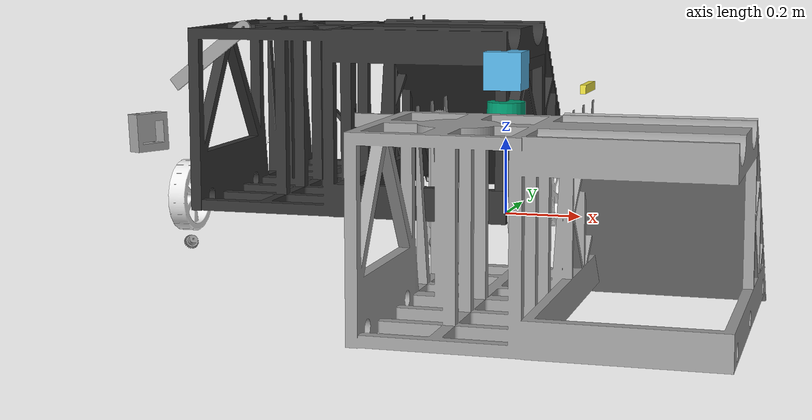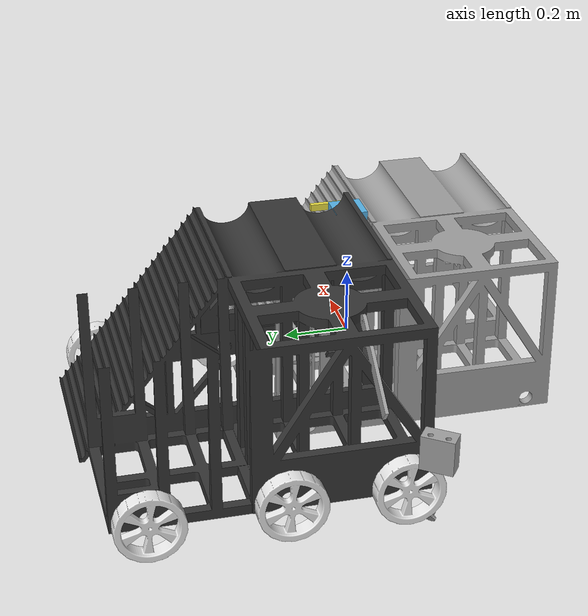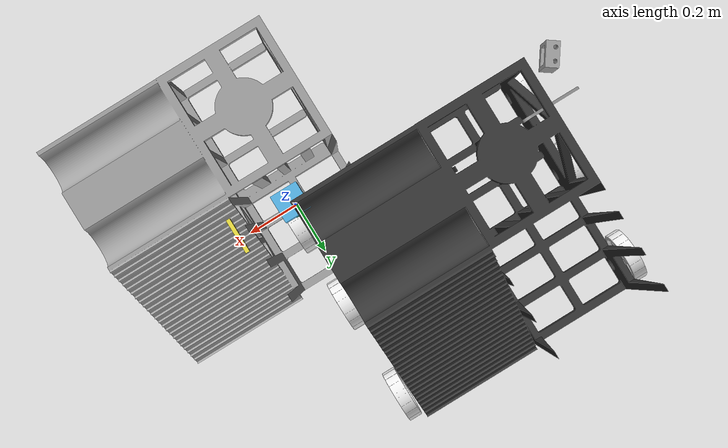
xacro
<?xml version="1.0"?>
<robot name="robot_R1" xmlns:xacro="http://ros.org/wiki/xacro">

  <!-- Include the base robot (chassis, wheels, sensors) -->
  <xacro:include filename="base_R1.xacro" />

  <!-- Include the hand/arm manipulator -->
  <xacro:include filename="hand.xacro" />

  <!-- Instantiate the base -->
  <xacro:r1_base />

  <!-- Instantiate the hand manipulator -->
  <xacro:hand_manipulator />

  <!-- Connect hand to the base via the torso mount point -->
  <joint name="hand_to_base_joint" type="fixed">
    <parent link="base_link_torso_mount_point"/>
    <child link="hand_root_link"/>
    <origin xyz="0 0 0" rpy="3.14159 0 0"/>
  </joint>

</robot>

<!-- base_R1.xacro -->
<robot xmlns:xacro="http://ros.org/wiki/xacro">

  <!-- R1 Base Macro: chassis, 6 mecanum wheels, sensors             -->
  <!-- Converted from R1/robot.sdf (onshape-to-robot export)        -->

  <!-- Materials -->
  <material name="dark_grey">
    <color rgba="0.207843 0.207843 0.207843 1"/>
  </material>
  <material name="light_grey">
    <color rgba="0.627451 0.627451 0.627451 1"/>
  </material>
  <material name="wheel_white">
    <color rgba="0.917647 0.917647 0.917647 1"/>
  </material>
  <material name="metal">
    <color rgba="0.65098 0.619608 0.588235 1"/>
  </material>
  <material name="axle_silver">
    <color rgba="0.776471 0.756863 0.737255 1"/>
  </material>

  <!-- Wheel assembly macro (motor + wheel, all fixed for RSP)      -->
  <xacro:macro name="wheel_assembly" params="name motor_name
      motor_x motor_y motor_z motor_roll motor_pitch motor_yaw
      wheel_x wheel_y wheel_z wheel_roll wheel_pitch wheel_yaw
      vis_x vis_y vis_z vis_roll vis_pitch vis_yaw">

    <!-- Motor link (no visual in RSP – tiny box placeholder) -->
    <link name="${motor_name}">
      <inertial>
        <origin xyz="0.0000014 0.000109 -0.057213" rpy="0 0 0"/>
        <mass value="0.324308"/>
        <inertia ixx="0.000605469" ixy="0" ixz="0"
                 iyy="0.000605856" iyz="0.00000308"
                 izz="0.0000811588"/>
      </inertial>
    </link>

    <!-- Motor mount joint -->
    <joint name="${motor_name}_joint" type="fixed">
      <parent link="chassis_link"/>
      <child link="${motor_name}"/>
      <origin xyz="${motor_x} ${motor_y} ${motor_z}"
              rpy="${motor_roll} ${motor_pitch} ${motor_yaw}"/>
    </joint>

    <!-- Wheel link -->
    <link name="${name}">
      <visual>
        <origin xyz="${vis_x} ${vis_y} ${vis_z}"
                rpy="${vis_roll} ${vis_pitch} ${vis_yaw}"/>
        <geometry>
          <mesh filename="package://robocon_description/models/R1/assets/wheel.stl"/>
        </geometry>
        <material name="wheel_white"/>
      </visual>
      <collision>
        <origin xyz="${vis_x} ${vis_y} ${vis_z}"
                rpy="${vis_roll} ${vis_pitch} ${vis_yaw}"/>
        <geometry>
          <mesh filename="package://robocon_description/models/R1/assets/wheel.stl"/>
        </geometry>
      </collision>
      <inertial>
        <origin xyz="0 0 -0.0125" rpy="0 0 0"/>
        <mass value="0.971481"/>
        <inertia ixx="0.00341056" ixy="0" ixz="0"
                 iyy="0.00341056" iyz="0"
                 izz="0.00650278"/>
      </inertial>
    </link>

    <!-- Wheel joint -->
    <joint name="${name}_joint" type="fixed">
      <parent link="${motor_name}"/>
      <child link="${name}"/>
      <origin xyz="${wheel_x} ${wheel_y} ${wheel_z}"
              rpy="${wheel_roll} ${wheel_pitch} ${wheel_yaw}"/>
    </joint>
  </xacro:macro>

  <!-- Main R1 Base Macro                                            -->
  <xacro:macro name="r1_base">

    <!-- ======== ROS Standard Roots ======== -->
    <link name="base_footprint"/>

    <joint name="base_joint" type="fixed">
      <parent link="base_footprint"/>
      <child link="base_link"/>
      <origin xyz="0 0 0.05" rpy="0 0 0"/>
    </joint>

    <link name="base_link"/>

    <!-- Flip the upside-down CAD and hoist it so wheels touch the floor -->
    <!-- Wheels are at Z=0.389 relative to the flipped chassis -->
    <joint name="chassis_joint" type="fixed">
      <parent link="base_link"/>
      <child link="chassis_link"/>
      <origin xyz="0 0 0.339" rpy="3.14159 0 0"/>
    </joint>

    <!-- ======== base_link (root of the robot) ======== -->
    <link name="chassis_link">
      <visual>
        <origin xyz="-0.9 -0.835751 0.348078" rpy="-3.14159 0 0"/>
        <geometry>
          <mesh filename="package://robocon_description/models/R1/assets/base_link.stl"/>
        </geometry>
        <material name="dark_grey"/>
      </visual>
      <collision>
        <origin xyz="-0.9 -0.835751 0.348078" rpy="-3.14159 0 0"/>
        <geometry>
          <mesh filename="package://robocon_description/models/R1/assets/base_link.stl"/>
        </geometry>
      </collision>
      <inertial>
        <origin xyz="-0.485863 -0.403669 0.194909" rpy="0 0 0"/>
        <mass value="41.4803"/>
        <inertia ixx="4.3721" ixy="0.293695" ixz="0.231154"
                 iyy="4.8724" iyz="0.568069"
                 izz="6.23924"/>
      </inertial>
    </link>

    <!-- ======== side_frame (child of base_link) ======== -->
    <link name="side_frame">
      <visual>
        <origin xyz="-0.450001 0.373741 0.14124" rpy="0 0 0"/>
        <geometry>
          <mesh filename="package://robocon_description/models/R1/assets/side_frame.stl"/>
        </geometry>
        <material name="dark_grey"/>
      </visual>
      <collision>
        <origin xyz="-0.450001 0.373741 0.14124" rpy="0 0 0"/>
        <geometry>
          <mesh filename="package://robocon_description/models/R1/assets/side_frame.stl"/>
        </geometry>
      </collision>
      <inertial>
        <origin xyz="0.434999 -0.222872 0.309742" rpy="0 0 0"/>
        <mass value="2.95367"/>
        <inertia ixx="0.110659" ixy="0" ixz="0"
                 iyy="0.0398301" iyz="0.0000176212"
                 izz="0.0712717"/>
      </inertial>
    </link>

    <joint name="side_frame_joint" type="fixed">
      <parent link="chassis_link"/>
      <child link="side_frame"/>
      <!-- Inverse transform of the original Fastened 1 -->
      <origin xyz="-0.449999 -0.462921 0.489318" rpy="3.14159 0 0"/>
    </joint>

    <!-- Mount point for the hand/arm manipulator -->
    <link name="base_link_torso_mount_point"/>
    <joint name="torso_mount_joint" type="fixed">
      <parent link="chassis_link"/>
      <child link="base_link_torso_mount_point"/>
      <!-- Arm is included at this offset in R1 robot.sdf -->
      <origin xyz="-0.239995 -0.224112 0.576396" rpy="0 0 0"/>
    </joint>

    <!-- 6x Mecanum Wheel Assemblies                                   -->
    <!-- Poses extracted from R1/robot.sdf Fastened joints             -->

    <!-- Wheel 1 (front-left) — base_motor_copy_1 → wheel -->
    <xacro:wheel_assembly
      name="wheel_1" motor_name="base_motor_copy_1"
      motor_x="-0.9" motor_y="-0.0751237" motor_z="0.38953"
      motor_roll="1.5708" motor_pitch="0" motor_yaw="-1.5708"
      wheel_x="0" wheel_y="0" wheel_z="0.022"
      wheel_roll="-3.14159" wheel_pitch="0" wheel_yaw="-0.785398"
      vis_x="-0.00131432" vis_y="0.0414513" vis_z="0.0181359"
      vis_roll="-1.5708" vis_pitch="-1.5708" vis_yaw="0"/>

    <!-- Wheel 2 (front-right) — base_motor_copy_4 → wheel_2 -->
    <xacro:wheel_assembly
      name="wheel_2" motor_name="base_motor_copy_4"
      motor_x="-0.9" motor_y="-0.405124" motor_z="0.38953"
      motor_roll="1.5708" motor_pitch="0" motor_yaw="-1.5708"
      wheel_x="0" wheel_y="0" wheel_z="0.022"
      wheel_roll="-3.14159" wheel_pitch="0" wheel_yaw="-0.785398"
      vis_x="-0.00131432" vis_y="0.0414513" vis_z="0.0181359"
      vis_roll="-1.5708" vis_pitch="-1.5708" vis_yaw="0"/>

    <!-- Wheel 3 (back-left) — base_motor_copy_5 → wheel_3 -->
    <xacro:wheel_assembly
      name="wheel_3" motor_name="base_motor_copy_5"
      motor_x="-0.899626" motor_y="-0.795124" motor_z="0.38953"
      motor_roll="1.5708" motor_pitch="0" motor_yaw="-1.5708"
      wheel_x="0" wheel_y="0" wheel_z="0.022"
      wheel_roll="3.14159" wheel_pitch="0" wheel_yaw="-0.785398"
      vis_x="-0.00131432" vis_y="0.0414513" vis_z="0.0181359"
      vis_roll="-1.5708" vis_pitch="-1.5708" vis_yaw="0"/>

    <!-- Wheel 4 — base_motor → wheel_4 -->
    <xacro:wheel_assembly
      name="wheel_4" motor_name="base_motor_r"
      motor_x="0" motor_y="-0.0751237" motor_z="0.389417"
      motor_roll="1.5708" motor_pitch="0" motor_yaw="1.5708"
      wheel_x="0.000328104" wheel_y="0.000328104" wheel_z="0.022"
      wheel_roll="-3.14159" wheel_pitch="0" wheel_yaw="-2.35619"
      vis_x="-0.00131432" vis_y="-0.0414513" vis_z="-0.0431359"
      vis_roll="1.5708" vis_pitch="1.5708" vis_yaw="0"/>

    <!-- Wheel 5 — base_motor_copy_2 → wheel_5 -->
    <xacro:wheel_assembly
      name="wheel_5" motor_name="base_motor_copy_2"
      motor_x="0" motor_y="-0.405124" motor_z="0.389417"
      motor_roll="1.5708" motor_pitch="0" motor_yaw="1.5708"
      wheel_x="0" wheel_y="0" wheel_z="0.022"
      wheel_roll="-3.14159" wheel_pitch="0" wheel_yaw="-2.35619"
      vis_x="-0.00131432" vis_y="-0.0414513" vis_z="-0.0431359"
      vis_roll="1.5708" vis_pitch="1.5708" vis_yaw="0"/>

    <!-- Wheel 6 — base_motor_copy_3 → wheel_6 -->
    <xacro:wheel_assembly
      name="wheel_6" motor_name="base_motor_copy_3"
      motor_x="0" motor_y="-0.795124" motor_z="0.389417"
      motor_roll="1.5708" motor_pitch="0" motor_yaw="1.5708"
      wheel_x="0" wheel_y="0" wheel_z="0.022"
      wheel_roll="-3.14159" wheel_pitch="0" wheel_yaw="-2.35619"
      vis_x="-0.00131432" vis_y="-0.0414513" vis_z="-0.0431359"
      vis_roll="1.5708" vis_pitch="1.5708" vis_yaw="0"/>

    <!-- Sensors                                                       -->

    <!-- IMU -->
    <link name="imu_link">
      <visual>
        <geometry>
          <box size="0.1 0.1 0.1"/>
        </geometry>
      </visual>
      <collision>
        <geometry>
          <box size="0.1 0.1 0.1"/>
        </geometry>
      </collision>
      <inertial>
        <mass value="0.1"/>
        <inertia ixx="0.000166667" ixy="0" ixz="0"
                 iyy="0.000166667" iyz="0"
                 izz="0.000166667"/>
      </inertial>
    </link>
    <joint name="imu_joint" type="fixed">
      <parent link="chassis_link"/>
      <child link="imu_link"/>
      <origin xyz="0.0 0.0 0.01" rpy="0 0 0"/>
    </joint>

    <!-- LIDAR -->
    <link name="lidar_link">
      <visual>
        <geometry>
          <cylinder radius="0.0508" length="0.055"/>
        </geometry>
      </visual>
      <collision>
        <geometry>
          <cylinder radius="0.0508" length="0.055"/>
        </geometry>
      </collision>
      <inertial>
        <mass value="0.125"/>
        <inertia ixx="0.000112155" ixy="0" ixz="0"
                 iyy="0.000112155" iyz="0"
                 izz="0.000161290"/>
      </inertial>
    </link>
    <joint name="lidar_joint" type="fixed">
      <parent link="chassis_link"/>
      <child link="lidar_link"/>
      <origin xyz="0.0 0.0 0.12" rpy="0 0 0"/>
    </joint>

    <!-- Depth Camera -->
    <link name="camera_link">
      <visual>
        <geometry>
          <box size="0.015 0.130 0.0222"/>
        </geometry>
      </visual>
      <collision>
        <geometry>
          <box size="0.015 0.130 0.0222"/>
        </geometry>
      </collision>
      <inertial>
        <mass value="0.035"/>
        <inertia ixx="0.000002094" ixy="0" ixz="0"
                 iyy="0.000050729" iyz="0"
                 izz="0.000049948"/>
      </inertial>
    </link>
    <joint name="camera_joint" type="fixed">
      <parent link="chassis_link"/>
      <child link="camera_link"/>
      <origin xyz="0.215 0 0.05" rpy="0 0 0"/>
    </joint>

  </xacro:macro>
</robot>

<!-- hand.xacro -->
<robot xmlns:xacro="http://ros.org/wiki/xacro">

  <!-- Hand/Arm Manipulator Macro                                    -->
  <!-- Converted from robot/robot.sdf (onshape-to-robot export)     -->
  <!-- Kinematic chain (simplified for ROS TF):                      -->
  <!--   hand_root_link (connector)                                  -->
  <!--     └─ connector_joint (revolute, joint0)                     -->
  <!--         └─ arm_base_link                                      -->
  <!--             ├─ (fixed chain) arm_1_l, arm_1_r, base_motor_h   -->
  <!--             └─ Revolute_1 (revolute, joint1)                  -->
  <!--                 └─ arm_link_1 (joining_rod_1 + arm_2)         -->
  <!--                     └─ Revolute_2 (revolute, joint2)          -->
  <!--                         └─ arm_link_2 (gear + joining_rod_2)  -->
  <!--                             └─ arm_link_3 (arm_3_l + arm_3_r) -->
  <!--                                 ├─ Revolute_3 (revolute, j3)  -->
  <!--                                 │   └─ arm_link_4 (arm_4)     -->
  <!--                                 │       └─ end_effector        -->
  <!--                                 │           ├─ Revolute_4 (j4) -->
  <!--                                 │           ├─ Slider_1 (grip) -->
  <!--                                 │           └─ Slider_2 (grip) -->
  <!--                                 └─ motor_2_assembly (fixed)   -->

  <material name="arm_grey">
    <color rgba="0.627451 0.627451 0.627451 1"/>
  </material>
  <material name="arm_dark">
    <color rgba="0.207843 0.207843 0.207843 1"/>
  </material>

  <xacro:macro name="hand_manipulator">

    <!-- Root link of the hand (connector) — attaches to base      -->
    <link name="hand_root_link">
      <inertial>
        <origin xyz="0 0 0" rpy="0 0 0"/>
        <mass value="0.000000001"/>
        <inertia ixx="1e-9" ixy="0" ixz="0" iyy="1e-9" iyz="0" izz="1e-9"/>
      </inertial>
    </link>

    <!-- Joint 0: connector_joint — base rotation (revolute Z)     -->
    <joint name="connector_joint" type="revolute">
      <parent link="hand_root_link"/>
      <child link="arm_base_link"/>
      <origin xyz="0 0 0" rpy="0 0 0"/>
      <axis xyz="0 0 1"/>
      <limit lower="-3.14159" upper="3.14159" effort="300" velocity="100"/>
      <dynamics damping="0.0" friction="0.0"/>
    </joint>

    <!-- Arm base_link (turntable platform)                        -->
    <!-- Note: renamed to arm_base_link to avoid conflict with     -->
    <!--       the R1 chassis base_link                            -->
    <link name="arm_base_link">
      <visual>
        <origin xyz="0 0 0.03056" rpy="0 0 0"/>
        <geometry>
          <mesh filename="package://robocon_description/models/robot/assets/base_link.stl"/>
        </geometry>
        <material name="arm_grey"/>
      </visual>
      <collision>
        <origin xyz="0 0 0.03056" rpy="0 0 0"/>
        <geometry>
          <mesh filename="package://robocon_description/models/robot/assets/base_link.stl"/>
        </geometry>
      </collision>
      <inertial>
        <origin xyz="0 0 0.0183377" rpy="0 0 0"/>
        <mass value="1.12889"/>
        <inertia ixx="0.00242769" ixy="0" ixz="0"
                 iyy="0.00242769" iyz="0"
                 izz="0.00458701"/>
      </inertial>
    </link>

    <!-- Arm shoulder assembly (Mate connector 2 + arm_1_l + arm_1_r + motor holder) -->
    <!-- These are all rigidly connected, so we combine into one logical link -->
    <link name="arm_shoulder">
      <visual>
        <origin xyz="0 -0.000499997 0" rpy="3.14159 0 0"/>
        <geometry>
          <mesh filename="package://robocon_description/models/robot/assets/arm_1_l.stl"/>
        </geometry>
        <material name="arm_grey"/>
      </visual>
      <collision>
        <origin xyz="0 -0.000499997 0" rpy="3.14159 0 0"/>
        <geometry>
          <mesh filename="package://robocon_description/models/robot/assets/arm_1_l.stl"/>
        </geometry>
      </collision>
      <inertial>
        <origin xyz="0 0.038 -0.0568212" rpy="0 0 0"/>
        <mass value="0.0727815"/>
        <inertia ixx="7.28387e-05" ixy="0" ixz="0"
                 iyy="0.000106914" iyz="0"
                 izz="3.5288e-05"/>
      </inertial>
    </link>

    <!-- Fixed joint: arm_base_link → arm_shoulder (Fastened 3 in SDF) -->
    <joint name="arm_shoulder_joint" type="fixed">
      <parent link="arm_base_link"/>
      <child link="arm_shoulder"/>
      <origin xyz="0 0 0.03056" rpy="3.14159 0 0"/>
    </joint>

    <!-- Joint 1: Revolute 1 — shoulder rotation                   -->
    <link name="arm_link_1">
      <visual>
        <origin xyz="0 -0.086 -0.001" rpy="-1.5708 0 0"/>
        <geometry>
          <mesh filename="package://robocon_description/models/robot/assets/joining_rod_1.stl"/>
        </geometry>
        <material name="arm_grey"/>
      </visual>
      <collision>
        <origin xyz="0 -0.086 -0.001" rpy="-1.5708 0 0"/>
        <geometry>
          <mesh filename="package://robocon_description/models/robot/assets/joining_rod_1.stl"/>
        </geometry>
      </collision>
      <inertial>
        <origin xyz="0 0 0" rpy="0 0 0"/>
        <mass value="0.0155207"/>
        <inertia ixx="1.71672e-05" ixy="0" ixz="0"
                 iyy="1.71672e-05" iyz="0"
                 izz="1.24166e-07"/>
      </inertial>
    </link>

    <joint name="Revolute 1" type="revolute">
      <parent link="arm_shoulder"/>
      <child link="arm_link_1"/>
      <origin xyz="0 0.0000333175 -0.086" rpy="-1.5708 0 0"/>
      <axis xyz="0 0 1"/>
      <limit lower="-3.14159" upper="3.14159" effort="30" velocity="100"/>
      <dynamics damping="0.0" friction="0.0"/>
    </joint>

    <!-- Arm link 2 (arm_2 / Mate connector 8)                     -->
    <!-- Fixed chain: joining_rod_1 → arm_2 (Fastened 4)           -->
    <link name="arm_link_2">
      <visual>
        <origin xyz="0.0000100492 -0.0860201 -0.000500003" rpy="-1.5708 0 0"/>
        <geometry>
          <mesh filename="package://robocon_description/models/robot/assets/arm_2.stl"/>
        </geometry>
        <material name="arm_grey"/>
      </visual>
      <collision>
        <origin xyz="0.0000100492 -0.0860201 -0.000500003" rpy="-1.5708 0 0"/>
        <geometry>
          <mesh filename="package://robocon_description/models/robot/assets/arm_2.stl"/>
        </geometry>
      </collision>
      <inertial>
        <origin xyz="-0.000288184 0.146899 0.000134941" rpy="0 0 0"/>
        <mass value="0.438917"/>
        <inertia ixx="0.00357355" ixy="5.47325e-06" ixz="2.9186e-07"
                 iyy="0.000884745" iyz="-4.10493e-06"
                 izz="0.00284251"/>
      </inertial>
    </link>

    <!-- Fastened 4: joining_rod → arm_2 (fixed) -->
    <joint name="arm_link_2_joint" type="fixed">
      <parent link="arm_link_1"/>
      <child link="arm_link_2"/>
      <!-- Pose from SDF Fastened 4 relative to joining_rod_1 -->
      <origin xyz="0 0 0" rpy="0 0 0"/>
    </joint>

    <!-- Joint 2: Revolute 2 — elbow rotation                      -->
    <link name="arm_link_2b">
      <visual>
        <origin xyz="-0.0110082 0.359488 0.00844098" rpy="1.5708 0 0.0349066"/>
        <geometry>
          <mesh filename="package://robocon_description/models/robot/assets/gear_1.stl"/>
        </geometry>
        <material name="arm_grey"/>
      </visual>
      <collision>
        <origin xyz="-0.0110082 0.359488 0.00844098" rpy="1.5708 0 0.0349066"/>
        <geometry>
          <mesh filename="package://robocon_description/models/robot/assets/gear_1.stl"/>
        </geometry>
      </collision>
      <inertial>
        <origin xyz="0 0 -0.0088763" rpy="0 0 0"/>
        <mass value="0.0606554"/>
        <inertia ixx="1.98986e-05" ixy="0" ixz="0"
                 iyy="1.98986e-05" iyz="0"
                 izz="3.15249e-05"/>
      </inertial>
    </link>

    <joint name="Revolute 2" type="revolute">
      <parent link="arm_link_2"/>
      <child link="arm_link_2b"/>
      <origin xyz="-0.000107217 0.2763 0.00370711" rpy="-3.14159 0 0"/>
      <axis xyz="0 0 1"/>
      <limit lower="-3.14159" upper="3.14159" effort="30" velocity="100"/>
      <dynamics damping="0.0" friction="0.0"/>
    </joint>

    <!-- Arm link 3 (forearm: arm_3_l + arm_3_r)                   -->
    <!-- Fixed chain from gear → joining_rod_2 → arm_3             -->
    <link name="arm_link_3">
      <visual>
        <origin xyz="0.000499999 -0.363 -0.0205" rpy="-1.5708 0 0"/>
        <geometry>
          <mesh filename="package://robocon_description/models/robot/assets/arm_3_l.stl"/>
        </geometry>
        <material name="arm_grey"/>
      </visual>
      <collision>
        <origin xyz="0.000499999 -0.363 -0.0205" rpy="-1.5708 0 0"/>
        <geometry>
          <mesh filename="package://robocon_description/models/robot/assets/arm_3_l.stl"/>
        </geometry>
      </collision>
      <inertial>
        <origin xyz="-0.138485 -0.0000903 0.0380018" rpy="0 0 0"/>
        <mass value="0.157196"/>
        <inertia ixx="2.18204e-05" ixy="1.37271e-07" ixz="2.384e-08"
                 iyy="0.00122139" iyz="5.76e-10"
                 izz="0.00124058"/>
      </inertial>
    </link>

    <!-- Fixed chain: gear → joining_rod_2 → arm_3 (simplified) -->
    <joint name="arm_link_3_joint" type="fixed">
      <parent link="arm_link_2b"/>
      <child link="arm_link_3"/>
      <origin xyz="0 0 0" rpy="0 0 0"/>
    </joint>

    <!-- Joint 3: Revolute 3 — wrist rotation                      -->
    <link name="arm_link_4">
      <visual>
        <origin xyz="0 -0.086 -0.001" rpy="-1.5708 0 0"/>
        <geometry>
          <mesh filename="package://robocon_description/models/robot/assets/arm_4_l.stl"/>
        </geometry>
        <material name="arm_grey"/>
      </visual>
      <collision>
        <origin xyz="0 -0.086 -0.001" rpy="-1.5708 0 0"/>
        <geometry>
          <mesh filename="package://robocon_description/models/robot/assets/arm_4_l.stl"/>
        </geometry>
      </collision>
      <inertial>
        <origin xyz="0 0 0" rpy="0 0 0"/>
        <mass value="0.05"/>
        <inertia ixx="1e-05" ixy="0" ixz="0"
                 iyy="1e-05" iyz="0"
                 izz="1e-05"/>
      </inertial>
    </link>

    <joint name="Revolute 3" type="revolute">
      <parent link="arm_link_3"/>
      <child link="arm_link_4"/>
      <origin xyz="-0.276963 -0.000525296 0.0037071" rpy="3.14159 0 -0.046463"/>
      <axis xyz="0 0 1"/>
      <limit lower="-3.14159" upper="3.14159" effort="30" velocity="100"/>
      <dynamics damping="0.0" friction="0.0"/>
    </joint>

    <!-- End effector assembly                                      -->
    <link name="end_effector_link">
      <visual>
        <origin xyz="0 0 0" rpy="0 0 0"/>
        <geometry>
          <mesh filename="package://robocon_description/models/robot/assets/end_effector_1.stl"/>
        </geometry>
        <material name="arm_grey"/>
      </visual>
      <collision>
        <origin xyz="0 0 0" rpy="0 0 0"/>
        <geometry>
          <mesh filename="package://robocon_description/models/robot/assets/end_effector_1.stl"/>
        </geometry>
      </collision>
      <inertial>
        <origin xyz="0 0 0" rpy="0 0 0"/>
        <mass value="0.05"/>
        <inertia ixx="1e-05" ixy="0" ixz="0"
                 iyy="1e-05" iyz="0"
                 izz="1e-05"/>
      </inertial>
    </link>

    <!-- Fixed chain: arm_link_4 → end_effector assembly -->
    <joint name="end_effector_joint" type="fixed">
      <parent link="arm_link_4"/>
      <child link="end_effector_link"/>
      <origin xyz="0 0 0" rpy="0 0 0"/>
    </joint>

    <!-- Joint 4: Revolute 4 — end effector rotation               -->
    <link name="end_effector_tip">
      <visual>
        <origin xyz="0 0 0" rpy="0 0 0"/>
        <geometry>
          <mesh filename="package://robocon_description/models/robot/assets/end_effector_3.stl"/>
        </geometry>
        <material name="arm_grey"/>
      </visual>
      <collision>
        <origin xyz="0 0 0" rpy="0 0 0"/>
        <geometry>
          <mesh filename="package://robocon_description/models/robot/assets/end_effector_3.stl"/>
        </geometry>
      </collision>
      <inertial>
        <origin xyz="0 0 0" rpy="0 0 0"/>
        <mass value="0.03"/>
        <inertia ixx="1e-06" ixy="0" ixz="0"
                 iyy="1e-06" iyz="0"
                 izz="1e-06"/>
      </inertial>
    </link>

    <joint name="Revolute 4" type="revolute">
      <parent link="end_effector_link"/>
      <child link="end_effector_tip"/>
      <origin xyz="0.00418158 0.031122 0.0297485" rpy="0 0 0.695746"/>
      <axis xyz="0 0 1"/>
      <limit lower="-3.14159" upper="3.14159" effort="30" velocity="100"/>
      <dynamics damping="0.0" friction="0.0"/>
    </joint>

    <!-- Gripper: Slider 1 (right) + Slider 2 (left, mimic)        -->

    <!-- Right gripper finger -->
    <link name="right_gripper_link">
      <visual>
        <origin xyz="0 0 0" rpy="0 0 0"/>
        <geometry>
          <box size="0.01 0.04 0.02"/>
        </geometry>
        <material name="arm_dark"/>
      </visual>
      <collision>
        <origin xyz="0 0 0" rpy="0 0 0"/>
        <geometry>
          <box size="0.01 0.04 0.02"/>
        </geometry>
      </collision>
      <inertial>
        <mass value="0.02"/>
        <inertia ixx="1e-06" ixy="0" ixz="0"
                 iyy="1e-06" iyz="0"
                 izz="1e-06"/>
      </inertial>
    </link>

    <joint name="Slider 1" type="prismatic">
      <parent link="end_effector_tip"/>
      <child link="right_gripper_link"/>
      <origin xyz="0.02 0 0" rpy="0 0 0"/>
      <axis xyz="0 0 1"/>
      <limit lower="-0.01280" upper="0.15775" effort="30" velocity="100"/>
      <dynamics damping="0.0" friction="0.0"/>
    </joint>

    <!-- Left gripper finger -->
    <link name="left_gripper_link">
      <visual>
        <origin xyz="0 0 0" rpy="0 0 0"/>
        <geometry>
          <box size="0.01 0.04 0.02"/>
        </geometry>
        <material name="arm_dark"/>
      </visual>
      <collision>
        <origin xyz="0 0 0" rpy="0 0 0"/>
        <geometry>
          <box size="0.01 0.04 0.02"/>
        </geometry>
      </collision>
      <inertial>
        <mass value="0.02"/>
        <inertia ixx="1e-06" ixy="0" ixz="0"
                 iyy="1e-06" iyz="0"
                 izz="1e-06"/>
      </inertial>
    </link>

    <joint name="Slider 2" type="prismatic">
      <parent link="end_effector_tip"/>
      <child link="left_gripper_link"/>
      <origin xyz="-0.02 0 0" rpy="0 0 0"/>
      <axis xyz="0 0 1"/>
      <limit lower="-0.01280" upper="0.15775" effort="30" velocity="100"/>
      <dynamics damping="0.0" friction="0.0"/>
      <mimic joint="Revolute 4" multiplier="1.0"/>
    </joint>

  </xacro:macro>
</robot>
